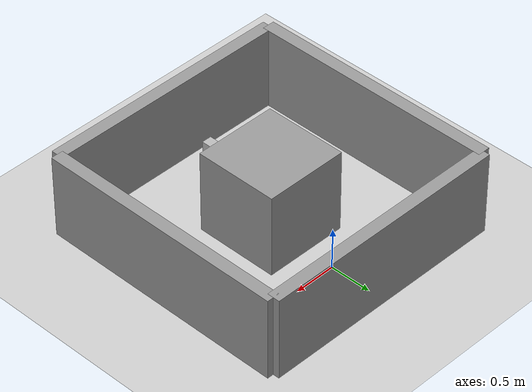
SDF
<sdf version="1.6">
 <world name="default">
  <light name="sun" type="directional">
   <pose>0 0 10 0 -0 0</pose>
   <diffuse>0.8 0.8 0.8 1</diffuse>
   <specular>0.2 0.2 0.2 1</specular>
   <attenuation>
    <range>1000</range>
    <constant>0.9</constant>
    <linear>0.01</linear>
    <quadratic>0.001</quadratic>
   </attenuation>
   <direction>0.5 0.1 -0.9</direction>
  </light>
  <model name="ground_plane">
   <static>1</static>
   <link name="link">
    <collision name="collision">
     <geometry><plane><normal>0 0 1</normal><size>100 100</size></plane></geometry>
     <surface><friction><ode><mu>100</mu><mu2>50</mu2></ode></friction></surface>
    </collision>
    <visual name="visual">
     <cast_shadows>0</cast_shadows>
     <geometry><plane><normal>0 0 1</normal><size>100 100</size></plane></geometry>
     <material>
      <script><uri>file://media/materials/scripts/gazebo.material</uri><name>Gazebo/Grey</name></script>
     </material>
    </visual>
    <velocity_decay><linear>0</linear><angular>0</angular></velocity_decay>
   </link>
  </model>
  <scene><ambient>0.4 0.4 0.4 1</ambient><background>0.7 0.7 0.7 1</background><shadows>0</shadows></scene>
  <physics name="default_physics" default="0" type="ode">
   <max_step_size>0.01</max_step_size>
   <real_time_factor>1</real_time_factor>
   <real_time_update_rate>0</real_time_update_rate>
  </physics>
  <model name="box">
   <pose>-0.107308 -1.82126 0.261643 -2.3e-05 6.9e-05 -0.001427</pose>
   <link name="link">
    <collision name="collision">
     <geometry><box><size>0.118041 0.110298 0.525034</size></box></geometry>
    </collision>
    <visual name="visual"><geometry><box><size>0.118041 0.110298 0.525034</size></box></geometry></visual>
    <inertial>
     <inertia><ixx>1</ixx><ixy>0</ixy><ixz>0</ixz><iyy>1</iyy><iyz>0</iyz><izz>1</izz></inertia>
     <mass>1</mass>
    </inertial>
   </link>
   <plugin name="model_push" filename="libmodel_push.so"/>
  </model>
  <model name="Maze Simple">
   <pose>0 -2.35 0 0 -0 1.567</pose>
   <link name="Wall_0">
    <collision name="Wall_0_Collision">
     <geometry><box><size>3 0.15 1</size></box></geometry>
     <pose>0 0 0.5 0 -0 0</pose>
    </collision>
    <visual name="Wall_0_Visual">
     <pose>0 0 0.5 0 -0 0</pose>
     <geometry><box><size>3 0.15 1</size></box></geometry>
     <material>
      <script><uri>file://media/materials/scripts/gazebo.material</uri><name>Gazebo/Grey</name></script>
      <ambient>1 1 1 1</ambient>
     </material>
    </visual>
    <pose>0 0 0 0 0 -1.5708</pose>
   </link>
   <link name="Wall_1">
    <collision name="Wall_1_Collision">
     <geometry><box><size>3 0.15 1</size></box></geometry>
     <pose>0 0 0.5 0 -0 0</pose>
    </collision>
    <visual name="Wall_1_Visual">
     <pose>0 0 0.5 0 -0 0</pose>
     <geometry><box><size>3 0.15 1</size></box></geometry>
     <material>
      <script><uri>file://media/materials/scripts/gazebo.material</uri><name>Gazebo/Grey</name></script>
      <ambient>1 1 1 1</ambient>
     </material>
    </visual>
    <pose>1.5 -1.5 0 0 -0 0</pose>
   </link>
   <link name="Wall_2">
    <collision name="Wall_2_Collision">
     <geometry><box><size>3 0.15 1</size></box></geometry>
     <pose>0 0 0.5 0 -0 0</pose>
    </collision>
    <visual name="Wall_2_Visual">
     <pose>0 0 0.5 0 -0 0</pose>
     <geometry><box><size>3 0.15 1</size></box></geometry>
     <material>
      <script><uri>file://media/materials/scripts/gazebo.material</uri><name>Gazebo/Grey</name></script>
      <ambient>1 1 1 1</ambient>
     </material>
    </visual>
    <pose>1.5 1.5 0 0 -0 0</pose>
   </link>
   <link name="Wall_3">
    <collision name="Wall_3_Collision">
     <geometry><box><size>3 0.15 1</size></box></geometry>
     <pose>0 0 0.5 0 -0 0</pose>
    </collision>
    <visual name="Wall_3_Visual">
     <pose>0 0 0.5 0 -0 0</pose>
     <geometry><box><size>3 0.15 1</size></box></geometry>
     <material>
      <script><uri>file://media/materials/scripts/gazebo.material</uri><name>Gazebo/Grey</name></script>
      <ambient>1 1 1 1</ambient>
     </material>
    </visual>
    <pose>3 0 0 0 0 -1.5708</pose>
   </link>
   <link name="Center">
    <collision name="Center_Collision">
     <geometry><box><size>1 1 1</size></box></geometry>
     <pose>0 0 0.5 0 -0 0</pose>
    </collision>
    <visual name="Center_Visual">
     <pose>0 0 0.5 0 -0 0</pose>
     <geometry><box><size>1 1 1</size></box></geometry>
     <material>
      <script><uri>file://media/materials/scripts/gazebo.material</uri><name>Gazebo/Grey</name></script>
      <ambient>1 1 1 1</ambient>
     </material>
    </visual>
    <pose>1.5 0 0 0 0 -1.5708</pose>
   </link>
   <static>1</static>
  </model>
  <gravity>0 0 -9.8</gravity>
  <magnetic_field>6e-06 2.3e-05 -4.2e-05</magnetic_field>
  <atmosphere type="adiabatic"/>
  <spherical_coordinates>
   <surface_model>EARTH_WGS84</surface_model>
   <latitude_deg>0</latitude_deg>
   <longitude_deg>0</longitude_deg>
   <elevation>0</elevation>
   <heading_deg>0</heading_deg>
  </spherical_coordinates>
 </world>
</sdf>
